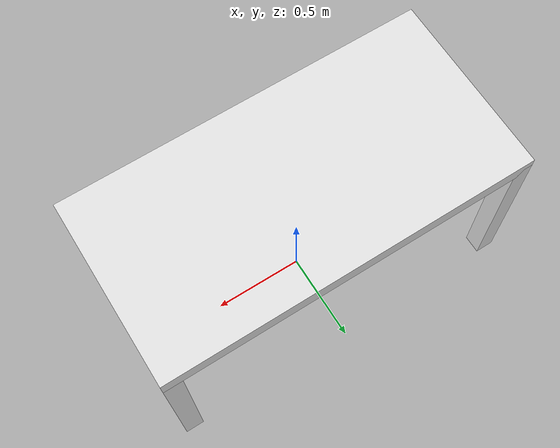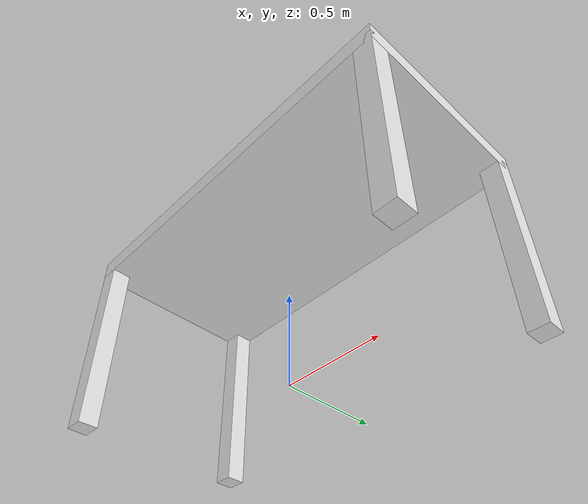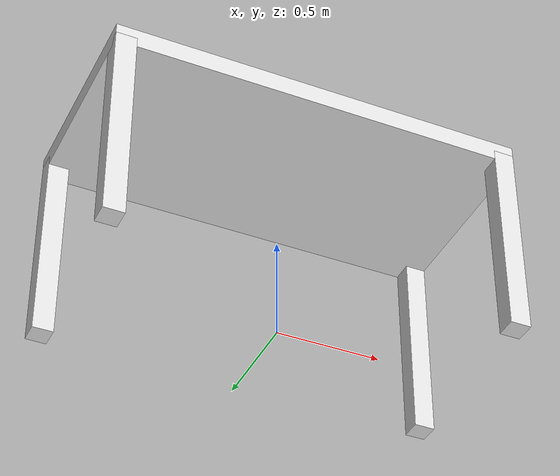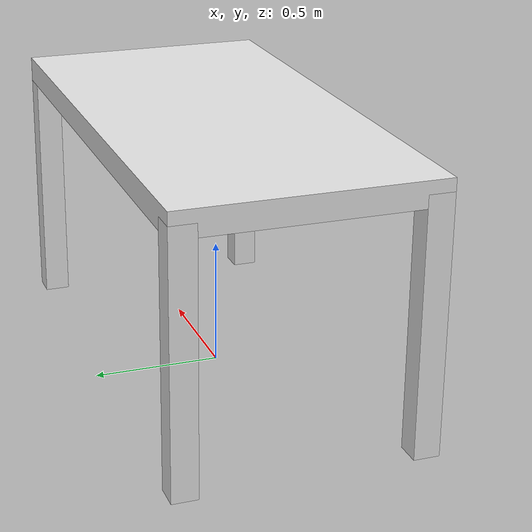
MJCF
<mujoco model="table">
    <worldbody>
        <body name="table" pos="0 0 1" quat="1 0 0 0">
            <geom type="box" size="1 .5 .05" rgba="0.9 0.9 .9 1" mass="6" condim="4" friction="1 0.005 0.0001" />
            <geom type="box" pos=".95 .45 -.5" size=".05 .05 .5" rgba="0.9 0.9 .9 1" mass="1" />
            <geom type="box" pos="-.95 .45 -.5" size=".05 .05 .5" rgba="0.9 0.9 .9 1" mass="1" />
            <geom type="box" pos=".95 -.45 -.5" size=".05 .05 .5" rgba="0.9 0.9 .9 1" mass="1" />
            <geom type="box" pos="-.95 -.45 -.5" size=".05 .05 .5" rgba="0.9 0.9 .9 1" mass="1" />
        </body>
    </worldbody>
</mujoco>
